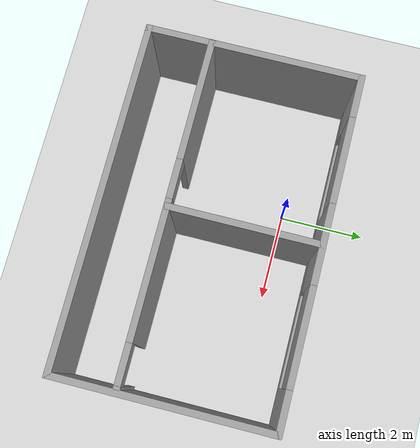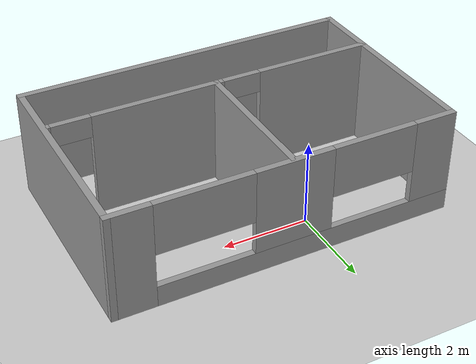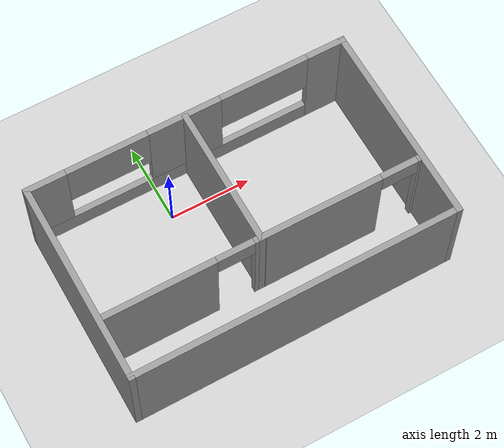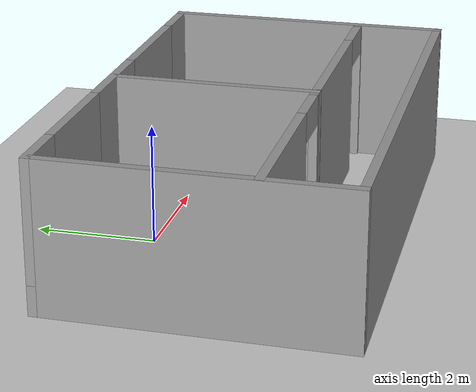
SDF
<sdf version="1.7">
 <world name="default">
  <light name="sun" type="directional">
   <pose>0 0 10 0 -0 0</pose>
   <diffuse>0.8 0.8 0.8 1</diffuse>
   <specular>0.2 0.2 0.2 1</specular>
   <attenuation>
    <range>1000</range>
    <constant>0.9</constant>
    <linear>0.01</linear>
    <quadratic>0.001</quadratic>
   </attenuation>
   <direction>-0.5 0.1 -0.9</direction>
   <spot><inner_angle>0</inner_angle><outer_angle>0</outer_angle><falloff>0</falloff></spot>
  </light>
  <model name="ground_plane">
   <static>1</static>
   <link name="link">
    <collision name="collision">
     <geometry><plane><normal>0 0 1</normal><size>100 100</size></plane></geometry>
     <surface>
      <contact><collide_bitmask>65535</collide_bitmask></contact>
      <friction><ode><mu>100</mu><mu2>50</mu2></ode></friction>
     </surface>
    </collision>
    <visual name="visual">
     <cast_shadows>0</cast_shadows>
     <geometry><plane><normal>0 0 1</normal><size>100 100</size></plane></geometry>
     <material>
      <script><uri>file://media/materials/scripts/gazebo.material</uri><name>Gazebo/Grey</name></script>
     </material>
    </visual>
   </link>
  </model>
  <gravity>0 0 -9.8</gravity>
  <magnetic_field>6e-06 2.3e-05 -4.2e-05</magnetic_field>
  <atmosphere type="adiabatic"/>
  <physics type="ode">
   <max_step_size>0.001</max_step_size>
   <real_time_factor>1</real_time_factor>
   <real_time_update_rate>1000</real_time_update_rate>
  </physics>
  <scene><ambient>0.4 0.4 0.4 1</ambient><background>0.7 0.7 0.7 1</background><shadows>1</shadows></scene>
  <spherical_coordinates>
   <surface_model>EARTH_WGS84</surface_model>
   <latitude_deg>0</latitude_deg>
   <longitude_deg>0</longitude_deg>
   <elevation>0</elevation>
   <heading_deg>0</heading_deg>
  </spherical_coordinates>
  <model name="salas">
   <pose>1 -1 0 0 -0 0</pose>
   <link name="Wall_0">
    <pose>0 1.9375 0 0 -0 3.14159</pose>
    <visual name="Wall_0_Visual_0">
     <pose>-3.50029 0 1.25 0 -0 0</pose>
     <geometry><box><size>0.999417 0.15 2.5</size></box></geometry>
     <material>
      <script><uri>file://media/materials/scripts/gazebo.material</uri><name>Gazebo/Grey</name></script>
      <ambient>1 1 1 1</ambient>
     </material>
     <meta><layer>0</layer></meta>
    </visual>
    <collision name="Wall_0_Collision_0">
     <geometry><box><size>0.999417 0.15 2.5</size></box></geometry>
     <pose>-3.50029 0 1.25 0 -0 0</pose>
    </collision>
    <visual name="Wall_0_Visual_1">
     <pose>0.499708 0 0.25 0 -0 0</pose>
     <geometry><box><size>7.00058 0.15 0.5</size></box></geometry>
     <material>
      <script><uri>file://media/materials/scripts/gazebo.material</uri><name>Gazebo/Grey</name></script>
      <ambient>1 1 1 1</ambient>
     </material>
     <meta><layer>0</layer></meta>
    </visual>
    <collision name="Wall_0_Collision_1">
     <geometry><box><size>7.00058 0.15 0.5</size></box></geometry>
     <pose>0.499708 0 0.25 0 -0 0</pose>
    </collision>
    <visual name="Wall_0_Visual_2">
     <pose>0.101632 0 1.5 0 -0 0</pose>
     <geometry><box><size>1.80602 0.15 2</size></box></geometry>
     <material>
      <script><uri>file://media/materials/scripts/gazebo.material</uri><name>Gazebo/Grey</name></script>
      <ambient>1 1 1 1</ambient>
     </material>
     <meta><layer>0</layer></meta>
    </visual>
    <collision name="Wall_0_Collision_2">
     <geometry><box><size>1.80602 0.15 2</size></box></geometry>
     <pose>0.101632 0 1.5 0 -0 0</pose>
    </collision>
    <visual name="Wall_0_Visual_3">
     <pose>3.49698 0 1.5 0 -0 0</pose>
     <geometry><box><size>1.00604 0.15 2</size></box></geometry>
     <material>
      <script><uri>file://media/materials/scripts/gazebo.material</uri><name>Gazebo/Grey</name></script>
      <ambient>1 1 1 1</ambient>
     </material>
     <meta><layer>0</layer></meta>
    </visual>
    <collision name="Wall_0_Collision_3">
     <geometry><box><size>1.00604 0.15 2</size></box></geometry>
     <pose>3.49698 0 1.5 0 -0 0</pose>
    </collision>
    <visual name="Wall_0_Visual_4">
     <pose>-1.90098 0 1.9 0 -0 0</pose>
     <geometry><box><size>2.19921 0.15 1.2</size></box></geometry>
     <material>
      <script><uri>file://media/materials/scripts/gazebo.material</uri><name>Gazebo/Grey</name></script>
      <ambient>1 1 1 1</ambient>
     </material>
     <meta><layer>0</layer></meta>
    </visual>
    <collision name="Wall_0_Collision_4">
     <geometry><box><size>2.19921 0.15 1.2</size></box></geometry>
     <pose>-1.90098 0 1.9 0 -0 0</pose>
    </collision>
    <visual name="Wall_0_Visual_5">
     <pose>1.9993 0 1.9 0 -0 0</pose>
     <geometry><box><size>1.98932 0.15 1.2</size></box></geometry>
     <material>
      <script><uri>file://media/materials/scripts/gazebo.material</uri><name>Gazebo/Grey</name></script>
      <ambient>1 1 1 1</ambient>
     </material>
     <meta><layer>0</layer></meta>
    </visual>
    <collision name="Wall_0_Collision_5">
     <geometry><box><size>1.98932 0.15 1.2</size></box></geometry>
     <pose>1.9993 0 1.9 0 -0 0</pose>
    </collision>
   </link>
   <link name="Wall_1">
    <collision name="Wall_1_Collision">
     <geometry><box><size>5 0.15 2.5</size></box></geometry>
     <pose>0 0 1.25 0 -0 0</pose>
    </collision>
    <visual name="Wall_1_Visual">
     <pose>0 0 1.25 0 -0 0</pose>
     <geometry><box><size>5 0.15 2.5</size></box></geometry>
     <material>
      <script><uri>file://media/materials/scripts/gazebo.material</uri><name>Gazebo/Grey</name></script>
      <ambient>1 1 1 1</ambient>
     </material>
     <meta><layer>0</layer></meta>
    </visual>
    <pose>-3.925 -0.4875 0 0 -0 -1.5708</pose>
   </link>
   <link name="Wall_13">
    <pose>1.86336 -1.46545 0 0 -0 0</pose>
    <visual name="Wall_13_Visual_0">
     <pose>-0.489098 0 1.25 0 -0 0</pose>
     <geometry><box><size>3.02181 0.15 2.5</size></box></geometry>
     <material>
      <script><uri>file://media/materials/scripts/gazebo.material</uri><name>Gazebo/Grey</name></script>
      <ambient>1 1 1 1</ambient>
     </material>
     <meta><layer>0</layer></meta>
    </visual>
    <collision name="Wall_13_Collision_0">
     <geometry><box><size>3.02181 0.15 2.5</size></box></geometry>
     <pose>-0.489098 0 1.25 0 -0 0</pose>
    </collision>
    <visual name="Wall_13_Visual_1">
     <pose>1.9609 0 1.25 0 -0 0</pose>
     <geometry><box><size>0.078195 0.15 2.5</size></box></geometry>
     <material>
      <script><uri>file://media/materials/scripts/gazebo.material</uri><name>Gazebo/Grey</name></script>
      <ambient>1 1 1 1</ambient>
     </material>
     <meta><layer>0</layer></meta>
    </visual>
    <collision name="Wall_13_Collision_1">
     <geometry><box><size>0.078195 0.15 2.5</size></box></geometry>
     <pose>1.9609 0 1.25 0 -0 0</pose>
    </collision>
    <visual name="Wall_13_Visual_2">
     <pose>1.47181 0 2.25 0 -0 0</pose>
     <geometry><box><size>0.9 0.15 0.5</size></box></geometry>
     <material>
      <script><uri>file://media/materials/scripts/gazebo.material</uri><name>Gazebo/Grey</name></script>
      <ambient>1 1 1 1</ambient>
     </material>
     <meta><layer>0</layer></meta>
    </visual>
    <collision name="Wall_13_Collision_2">
     <geometry><box><size>0.9 0.15 0.5</size></box></geometry>
     <pose>1.47181 0 2.25 0 -0 0</pose>
    </collision>
   </link>
   <link name="Wall_15">
    <pose>-1.98664 -1.46545 0 0 -0 3.14159</pose>
    <visual name="Wall_15_Visual_0">
     <pose>-1.8658 0 1.25 0 -0 0</pose>
     <geometry><box><size>0.2684 0.15 2.5</size></box></geometry>
     <material>
      <script><uri>file://media/materials/scripts/gazebo.material</uri><name>Gazebo/Grey</name></script>
      <ambient>1 1 1 1</ambient>
     </material>
     <meta><layer>0</layer></meta>
    </visual>
    <collision name="Wall_15_Collision_0">
     <geometry><box><size>0.2684 0.15 2.5</size></box></geometry>
     <pose>-1.8658 0 1.25 0 -0 0</pose>
    </collision>
    <visual name="Wall_15_Visual_1">
     <pose>0.5842 0 1.25 0 -0 0</pose>
     <geometry><box><size>2.8316 0.15 2.5</size></box></geometry>
     <material>
      <script><uri>file://media/materials/scripts/gazebo.material</uri><name>Gazebo/Grey</name></script>
      <ambient>1 1 1 1</ambient>
     </material>
     <meta><layer>0</layer></meta>
    </visual>
    <collision name="Wall_15_Collision_1">
     <geometry><box><size>2.8316 0.15 2.5</size></box></geometry>
     <pose>0.5842 0 1.25 0 -0 0</pose>
    </collision>
    <visual name="Wall_15_Visual_2">
     <pose>-1.2816 0 2.25 0 -0 0</pose>
     <geometry><box><size>0.9 0.15 0.5</size></box></geometry>
     <material>
      <script><uri>file://media/materials/scripts/gazebo.material</uri><name>Gazebo/Grey</name></script>
      <ambient>1 1 1 1</ambient>
     </material>
     <meta><layer>0</layer></meta>
    </visual>
    <collision name="Wall_15_Collision_2">
     <geometry><box><size>0.9 0.15 0.5</size></box></geometry>
     <pose>-1.2816 0 2.25 0 -0 0</pose>
    </collision>
   </link>
   <link name="Wall_2">
    <collision name="Wall_2_Collision">
     <geometry><box><size>8 0.15 2.5</size></box></geometry>
     <pose>0 0 1.25 0 -0 0</pose>
    </collision>
    <visual name="Wall_2_Visual">
     <pose>0 0 1.25 0 -0 0</pose>
     <geometry><box><size>8 0.15 2.5</size></box></geometry>
     <material>
      <script><uri>file://media/materials/scripts/gazebo.material</uri><name>Gazebo/Grey</name></script>
      <ambient>1 1 1 1</ambient>
     </material>
     <meta><layer>0</layer></meta>
    </visual>
    <pose>0 -2.9125 0 0 -0 0</pose>
   </link>
   <link name="Wall_5">
    <collision name="Wall_5_Collision">
     <geometry><box><size>5 0.15 2.5</size></box></geometry>
     <pose>0 0 1.25 0 -0 0</pose>
    </collision>
    <visual name="Wall_5_Visual">
     <pose>0 0 1.25 0 -0 0</pose>
     <geometry><box><size>5 0.15 2.5</size></box></geometry>
     <material>
      <script><uri>file://media/materials/scripts/gazebo.material</uri><name>Gazebo/Grey</name></script>
      <ambient>1 1 1 1</ambient>
     </material>
     <meta><layer>0</layer></meta>
    </visual>
    <pose>3.925 -0.4875 0 0 -0 1.5708</pose>
   </link>
   <link name="Wall_7">
    <collision name="Wall_7_Collision">
     <geometry><box><size>3.50005 0.15 2.5</size></box></geometry>
     <pose>0 0 1.25 0 -0 0</pose>
    </collision>
    <visual name="Wall_7_Visual">
     <pose>0 0 1.25 0 -0 0</pose>
     <geometry><box><size>3.50005 0.15 2.5</size></box></geometry>
     <material>
      <script><uri>file://media/materials/scripts/gazebo.material</uri><name>Gazebo/Grey</name></script>
      <ambient>1 1 1 1</ambient>
     </material>
     <meta><layer>0</layer></meta>
    </visual>
    <pose>-0.079129 0.209555 0 0 -0 -1.5708</pose>
   </link>
   <static>1</static>
  </model>
 </world>
</sdf>
